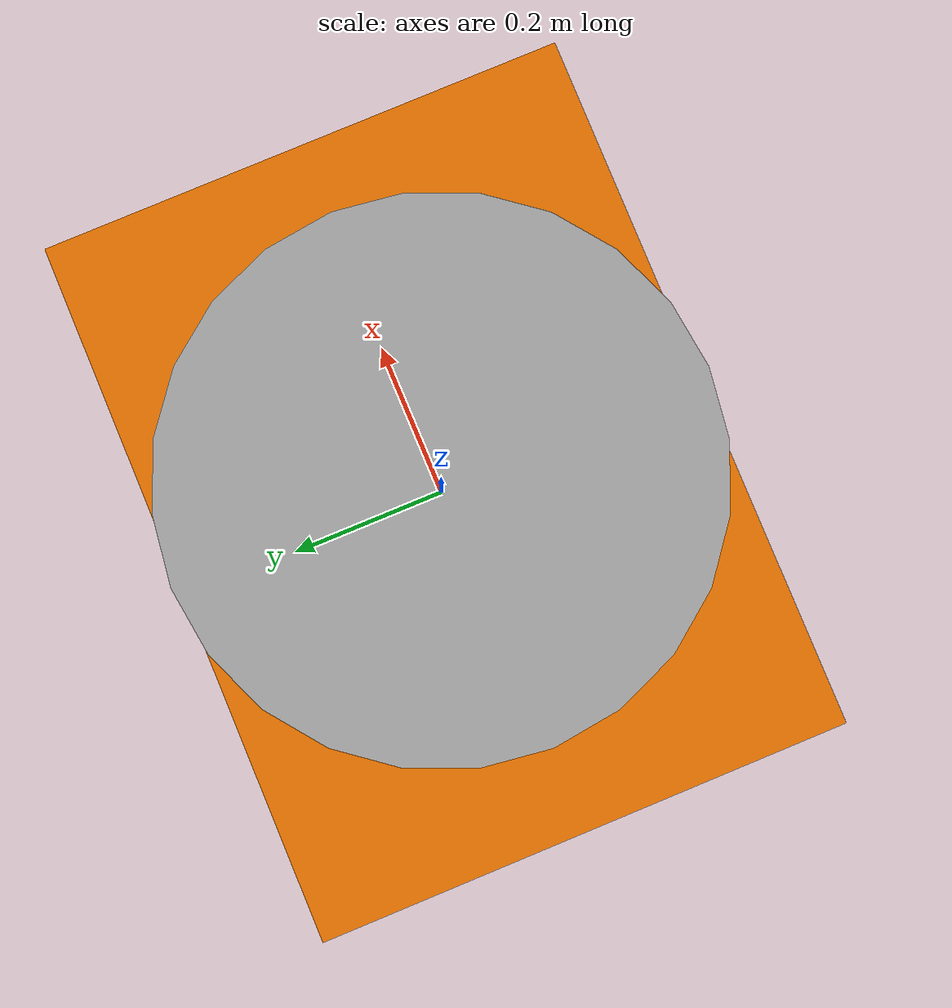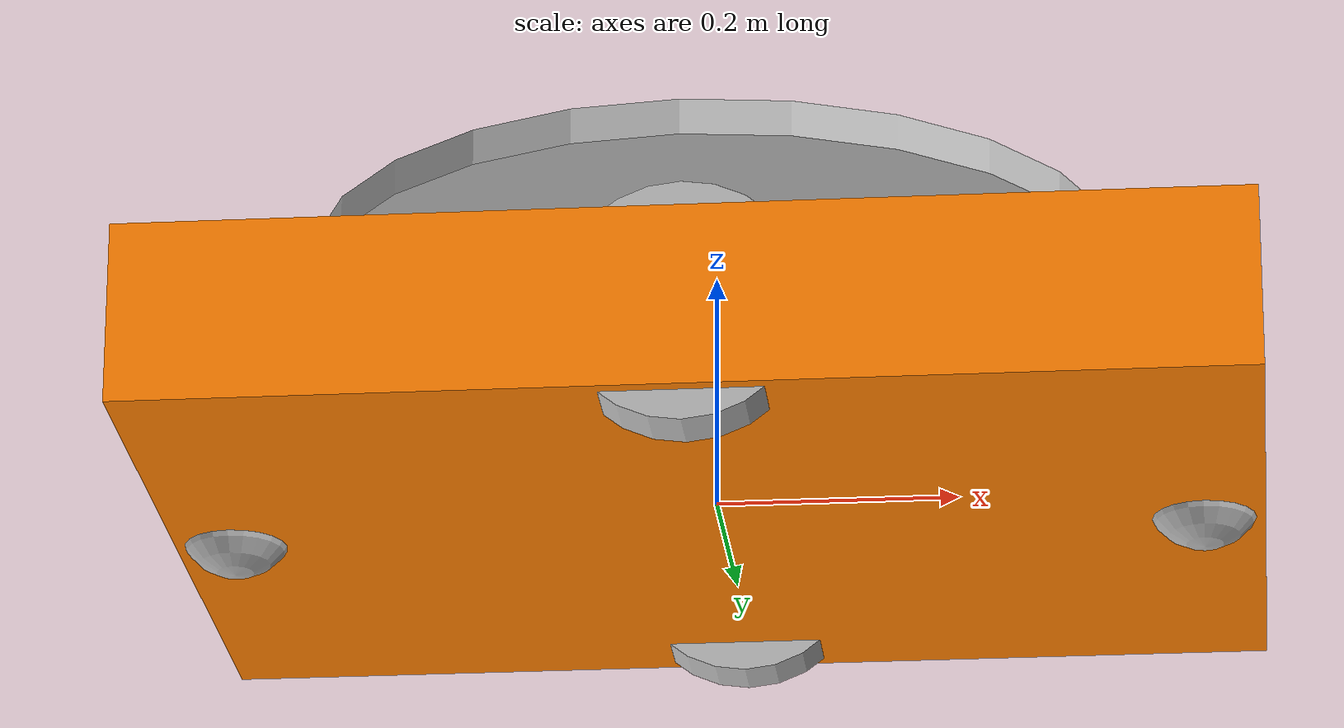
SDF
<?xml version='1.0'?>
<sdf version='1.4'>
<model name="amazon_robot">

<static>false</static>

<link name='chassis'>
  <pose>0 0 .05 0 0 0</pose>
  <collision name='collision'>
    <geometry>
      <box>
        <size>.9 .675 .15</size>
      </box>
    </geometry>
  </collision>

  <visual name='visual'>
    <geometry>
      <box>
        <size>.9 .675 .15</size>
      </box>
    </geometry>
  <material>
    <ambient>1 0.5 0 1</ambient>
    <diffuse>1 0.5 0 1</diffuse>
    <specular>0.1 0.1 0.1 1</specular>
    <emissive>0 0 0 0</emissive>
  </material>
  </visual>

  <collision name='caster_collision_front'>
    <pose>0.40 0 -0.05 0 0 0</pose>
    <geometry>
      <sphere>
        <radius>.05</radius>
      </sphere>
    </geometry>

  <surface>
    <friction>
      <ode>
        <mu>0</mu>
        <mu2>0</mu2>
        <slip1>1.0</slip1>
        <slip2>1.0</slip2>
      </ode>
    </friction>
  </surface>
</collision>

<visual name='caster_visual_front'>
  <pose>0.40 0 -0.05 0 0 0</pose>
  <geometry>
    <sphere>
      <radius>.05</radius>
    </sphere>
  </geometry>
</visual>

  <collision name='caster_collision_back'>
    <pose>-0.40 0 -0.05 0 0 0</pose>
    <geometry>
      <sphere>
        <radius>.05</radius>
      </sphere>
    </geometry>

  <surface>
    <friction>
      <ode>
        <mu>0</mu>
        <mu2>0</mu2>
        <slip1>1.0</slip1>
        <slip2>1.0</slip2>
      </ode>
    </friction>
  </surface>
</collision>

<visual name='caster_visual_back'>
  <pose>-0.40 0 -0.05 0 0 0</pose>
  <geometry>
    <sphere>
      <radius>.05</radius>
    </sphere>
  </geometry>
</visual>

</link>
<link name="left_wheel">
<pose>0 0.30 0.05 0 1.5707 1.5707</pose>
<collision name="collision">
  <geometry>
    <cylinder>
      <radius>.1</radius>
      <length>.05</length>
    </cylinder>
  </geometry>
</collision>
<visual name="visual">
  <geometry>
    <cylinder>
      <radius>.1</radius>
      <length>.05</length>
    </cylinder>
  </geometry>
</visual>
</link>

<link name="right_wheel">
<pose>0 -0.30 0.05 0 1.5707 1.5707</pose>
<collision name="collision">
  <geometry>
    <cylinder>
      <radius>.1</radius>
      <length>.05</length>
    </cylinder>
  </geometry>
</collision>
<visual name="visual">
  <geometry>
    <cylinder>
      <radius>.1</radius>
      <length>.05</length>
    </cylinder>
  </geometry>
</visual>
</link>

<!--
Lets try to add something on top of chasis that could screw rotate
-->

<link name="top_screw_lift">
<pose>0 0 0.2 0 0 0</pose>
<collision name="collision">
  <geometry>
    <cylinder>
      <radius>.3375</radius>
      <length>.03</length>
    </cylinder>
  </geometry>
        <surface>
          <friction>
            <ode>
              <mu>0</mu>
              <mu2>0</mu2>
            </ode>
          </friction>
        </surface>

</collision>
<visual name="visual">
  <geometry>
    <cylinder>
      <radius>.3375</radius>
      <length>.03</length>
    </cylinder>
  </geometry>
</visual>
</link>

<joint type="screw" name="top_screw_lift_hinge">
   <pose>0 0 0.2 0 0 0</pose>
  <child>top_screw_lift</child>
  <parent>chassis</parent>
   <axis>
     <xyz>0 0 -1</xyz>
     <limit>
       <upper>150</upper>
       <lower>0</lower>
     </limit>
   </axis>
   <thread_pitch>3141.6</thread_pitch>
</joint>

<!--
Screw rotate ends here
-->

<joint type="revolute" name="left_wheel_hinge">
<pose>0 0 -0.03 0 0 0</pose>
<child>left_wheel</child>
<parent>chassis</parent>
<axis>
  <xyz>0 1 0</xyz>
</axis>
</joint>

<joint type="revolute" name="right_wheel_hinge">
<pose>0 0 0.03 0 0 0</pose>
<child>right_wheel</child>
<parent>chassis</parent>
<axis>
  <xyz>0 1 0</xyz>
</axis>
</joint>

</model>
</sdf>
